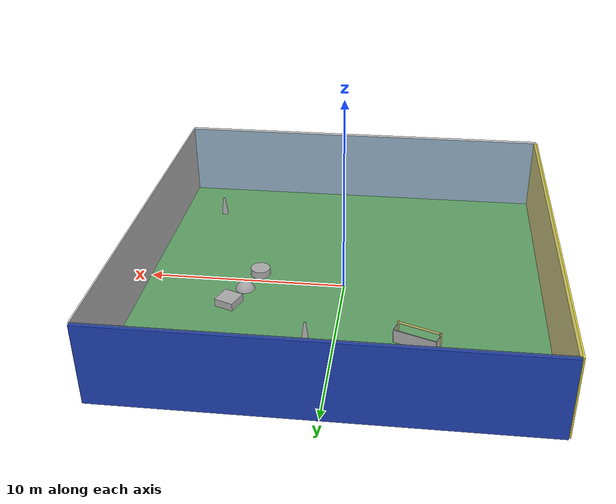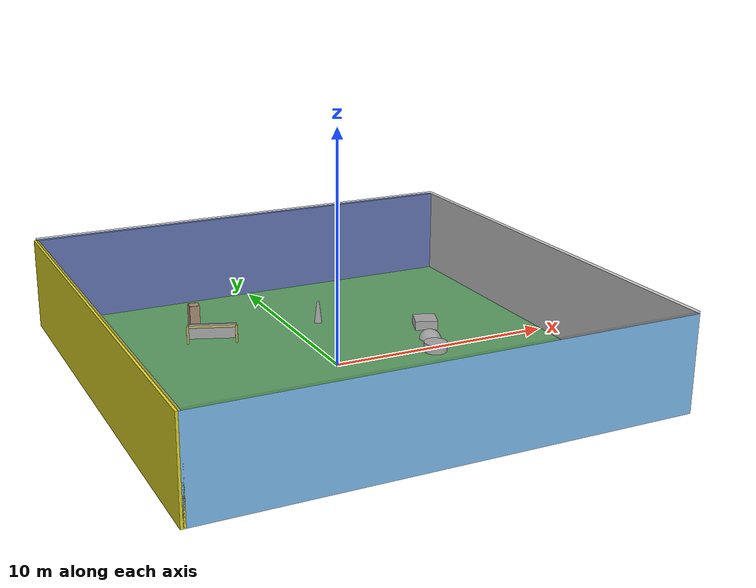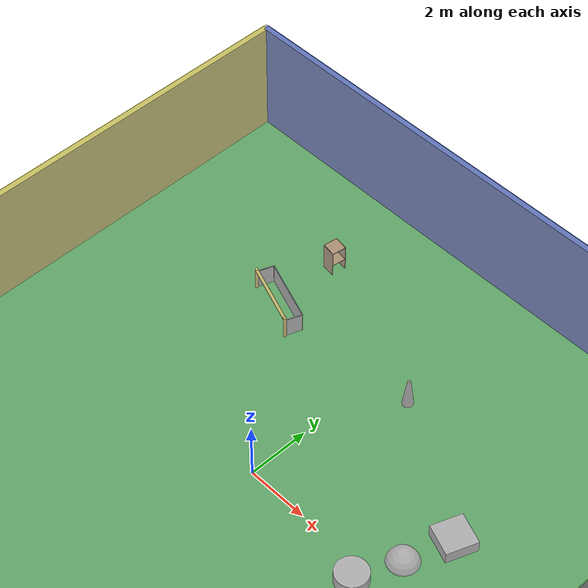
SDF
<sdf version="1.4">
 <world name="default">
  <physics type="ode">
   <max_step_size>0.001</max_step_size>
   <real_time_factor>1</real_time_factor>
   <real_time_update_rate>1000</real_time_update_rate>
   <gravity>0 0 -9.8</gravity>
  </physics>
  <scene><ambient>0.4 0.4 0.4 1</ambient><background>0.7 0.7 0.7 1</background><shadows>1</shadows></scene>
  <model name="Surrounding">
   <static>1</static>
   <link name="Ceiling">
    <collision name="Ceiling_Collision"><geometry><box><size>20 20 0.1</size></box></geometry></collision>
    <visual name="Ceiling_Visual">
     <geometry><box><size>20 20 0.1</size></box></geometry>
     <material>
      <script><uri>file://media/materials/scripts/gazebo.material</uri><name>Gazebo/GreyTransparent</name></script>
     </material>
    </visual>
    <pose>0 0 4.05 0 0 0</pose>
   </link>
   <link name="Wall_South">
    <collision name="Wall_South_Collision">
     <geometry><box><size>20 0 4</size></box></geometry>
     <pose>0 0 2 0 -0 0</pose>
    </collision>
    <visual name="Wall_South_Visual">
     <pose>0 0 2 0 -0 0</pose>
     <geometry><box><size>20 0 4</size></box></geometry>
     <material>
      <script><uri>file://media/materials/scripts/gazebo.material</uri><name>Gazebo/SkyBlue</name></script>
     </material>
    </visual>
    <velocity_decay><linear>0</linear><angular>0</angular></velocity_decay>
    <pose>0 -10 0 0 -0 0</pose>
   </link>
   <link name="Wall_East">
    <collision name="Wall_21_Collision">
     <geometry><box><size>20 0 4</size></box></geometry>
     <pose>0 0 2 0 -0 0</pose>
    </collision>
    <visual name="Wall_21_Visual">
     <pose>0 0 2 0 -0 0</pose>
     <geometry><box><size>20 0 4</size></box></geometry>
     <material>
      <script><uri>file://media/materials/scripts/gazebo.material</uri><name>Gazebo/Pioneer2Body</name></script>
     </material>
    </visual>
    <velocity_decay><linear>0</linear><angular>0</angular></velocity_decay>
    <pose>10 0 0 0 -0 1.5708</pose>
   </link>
   <link name="Wall_North">
    <collision name="Wall_22_Collision">
     <geometry><box><size>20 0.2 4</size></box></geometry>
     <pose>0 0 2 0 -0 0</pose>
    </collision>
    <visual name="Wall_22_Visual">
     <pose>0 0 2 0 -0 0</pose>
     <geometry><box><size>20 0.2 4</size></box></geometry>
     <material>
      <script><uri>file://media/materials/scripts/gazebo.material</uri><name>Gazebo/Blue</name></script>
     </material>
    </visual>
    <velocity_decay><linear>0</linear><angular>0</angular></velocity_decay>
    <pose>0 10 0 0 -0 0</pose>
   </link>
   <link name="Wall_West">
    <collision name="Wall_23_Collision">
     <geometry><box><size>20 0.2 4</size></box></geometry>
     <pose>0 0 2 0 -0 0</pose>
    </collision>
    <visual name="Wall_23_Visual">
     <pose>0 0 2 0 -0 0</pose>
     <geometry><box><size>20 0.2 4</size></box></geometry>
     <material>
      <script><uri>file://media/materials/scripts/gazebo.material</uri><name>Gazebo/YellowGlow</name></script>
     </material>
    </visual>
    <velocity_decay><linear>0</linear><angular>0</angular></velocity_decay>
    <pose>-10 0 0 0 0 -1.5708</pose>
   </link>
   <link name="Ground_link">
    <collision name="collision">
     <pose>0 0 .05 0 -0 0</pose>
     <geometry><box><size>20 20 0.1</size></box></geometry>
    </collision>
    <visual name="visual">
     <pose>0 0 .05 0 -0 0</pose>
     <geometry><box><size>20 20 0.1</size></box></geometry>
     <material>
      <script><uri>file://media/materials/scripts/gazebo.material</uri><name>Gazebo/GreenGlow</name></script>
     </material>
    </visual>
   </link>
   <static>1</static>
  </model>
  <spherical_coordinates>
   <surface_model>EARTH_WGS84</surface_model>
   <latitude_deg>0</latitude_deg>
   <longitude_deg>0</longitude_deg>
   <elevation>0</elevation>
   <heading_deg>0</heading_deg>
  </spherical_coordinates>
  <light name="lightball_0" type="diffuse">
   <diffuse>0.8 0.8 0.8 1</diffuse>
   <specular>0.2 0.2 0.2 1</specular>
   <attenuation>
    <range>100</range>
    <constant>0.7</constant>
    <linear>0.01</linear>
    <quadratic>0.001</quadratic>
   </attenuation>
   <direction>-0.5 0.1 -0.9</direction>
   <pose>0.510630234454 0.540500273763 1.98471604894 0 0 0</pose>
  </light>
  <light name="lightball_1" type="diffuse">
   <diffuse>0.8 0.8 0.8 1</diffuse>
   <specular>0.2 0.2 0.2 1</specular>
   <attenuation>
    <range>100</range>
    <constant>0.7</constant>
    <linear>0.01</linear>
    <quadratic>0.001</quadratic>
   </attenuation>
   <direction>-0.5 0.1 -0.9</direction>
   <pose>-2.89802007649 -3.62121143635 1.21745056434 0 0 0</pose>
  </light>
  <light name="lightball_2" type="diffuse">
   <diffuse>0.8 0.8 0.8 1</diffuse>
   <specular>0.2 0.2 0.2 1</specular>
   <attenuation>
    <range>100</range>
    <constant>0.7</constant>
    <linear>0.01</linear>
    <quadratic>0.001</quadratic>
   </attenuation>
   <direction>-0.5 0.1 -0.9</direction>
   <pose>-9.8344582874 7.98601172145 2.79937646053 0 0 0</pose>
  </light>
  <light name="lightball_3" type="diffuse">
   <diffuse>0.8 0.8 0.8 1</diffuse>
   <specular>0.2 0.2 0.2 1</specular>
   <attenuation>
    <range>100</range>
    <constant>0.7</constant>
    <linear>0.01</linear>
    <quadratic>0.001</quadratic>
   </attenuation>
   <direction>-0.5 0.1 -0.9</direction>
   <pose>6.27518092052 -6.66415394584 1.18087067395 0 0 0</pose>
  </light>
  <light name="lightball_4" type="diffuse">
   <diffuse>0.8 0.8 0.8 1</diffuse>
   <specular>0.2 0.2 0.2 1</specular>
   <attenuation>
    <range>100</range>
    <constant>0.7</constant>
    <linear>0.01</linear>
    <quadratic>0.001</quadratic>
   </attenuation>
   <direction>-0.5 0.1 -0.9</direction>
   <pose>0.551071650022 -3.1804013432 2.8469687997 0 0 0</pose>
  </light>
  <light name="lightball_5" type="diffuse">
   <diffuse>0.8 0.8 0.8 1</diffuse>
   <specular>0.2 0.2 0.2 1</specular>
   <attenuation>
    <range>100</range>
    <constant>0.7</constant>
    <linear>0.01</linear>
    <quadratic>0.001</quadratic>
   </attenuation>
   <direction>-0.5 0.1 -0.9</direction>
   <pose>-7.76457134971 -1.99242611248 2.71644229308 0 0 0</pose>
  </light>
  <light name="lightball_6" type="diffuse">
   <diffuse>0.8 0.8 0.8 1</diffuse>
   <specular>0.2 0.2 0.2 1</specular>
   <attenuation>
    <range>100</range>
    <constant>0.7</constant>
    <linear>0.01</linear>
    <quadratic>0.001</quadratic>
   </attenuation>
   <direction>-0.5 0.1 -0.9</direction>
   <pose>-8.15587990282 0.45047251672 1.83295112862 0 0 0</pose>
  </light>
  <light name="lightball_7" type="diffuse">
   <diffuse>0.8 0.8 0.8 1</diffuse>
   <specular>0.2 0.2 0.2 1</specular>
   <attenuation>
    <range>100</range>
    <constant>0.7</constant>
    <linear>0.01</linear>
    <quadratic>0.001</quadratic>
   </attenuation>
   <direction>-0.5 0.1 -0.9</direction>
   <pose>7.31851038391 -5.44535426966 3.51195017492 0 0 0</pose>
  </light>
  <light name="lightball_8" type="diffuse">
   <diffuse>0.8 0.8 0.8 1</diffuse>
   <specular>0.2 0.2 0.2 1</specular>
   <attenuation>
    <range>100</range>
    <constant>0.7</constant>
    <linear>0.01</linear>
    <quadratic>0.001</quadratic>
   </attenuation>
   <direction>-0.5 0.1 -0.9</direction>
   <pose>-4.29761085496 -5.393224839 2.127750129 0 0 0</pose>
  </light>
  <include>
   <uri>model://robocup_3Dsim_goal</uri>
   <pose>-3.89325092682 4.37319257755 0 0 0 1.2177785766</pose>
  </include>
  <include><uri>model://cabinet</uri><pose>-3.83171732961 6.96819730151 0 0 0 2.99462274963</pose></include>
  <include>
   <uri>model://construction_cone</uri>
   <pose>1.32470833656 4.80635331308 0 0 0 1.93881722013</pose>
  </include>
  <include>
   <uri>model://textured_shapes</uri>
   <pose>4.92058997782 0.879903877691 0 0 0 2.78062612983</pose>
  </include>
  <include>
   <uri>model://construction_cone</uri>
   <pose>7.7043862309 -6.91405151215 0 0 0 0.372654973428</pose>
  </include>
 </world>
</sdf>

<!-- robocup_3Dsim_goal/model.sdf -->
<sdf version="1.5">
  <model name="robocup_3d_goal">
    <static>true</static>
    <link name="left_post">
      <pose>0 1.05 0.45 0 0 0</pose>
      <collision name="collision">
        <geometry>
          <cylinder>
            <radius>0.05</radius>
            <length>0.9</length>
          </cylinder>
        </geometry>
      </collision>
      <visual name="visual">
        <geometry>
          <cylinder>
            <radius>0.05</radius>
            <length>0.9</length>
          </cylinder>
        </geometry>
        <material>
          <script>
            <uri>file://media/materials/scripts/gazebo.material</uri>
            <name>Gazebo/ZincYellow</name>
          </script>
        </material>
      </visual>
    </link>
    <link name="left_support_horiz_lower">
      <pose>0.30 1.05 0.01 0 0 0</pose>
      <collision name="collision">
        <geometry>
          <box>
            <size>0.50 0.02 0.02</size>
          </box>
        </geometry>
      </collision>
      <visual name="visual">
        <geometry>
          <box>
            <size>0.50 0.02 0.02</size>
          </box>
        </geometry>
        <material>
          <script>
            <uri>file://media/materials/scripts/gazebo.material</uri>
            <name>Gazebo/White</name>
          </script>
        </material>
      </visual>
    </link>
    <link name="left_support_horiz_upper">
      <pose>0.30 1.05 0.79 0 0 0</pose>
      <collision name="collision">
        <geometry>
          <box>
            <size>0.50 0.02 0.02</size>
          </box>
        </geometry>
      </collision>
      <visual name="visual">
        <geometry>
          <box>
            <size>0.50 0.02 0.02</size>
          </box>
        </geometry>
        <material>
          <script>
            <uri>file://media/materials/scripts/gazebo.material</uri>
            <name>Gazebo/White</name>
          </script>
        </material>
      </visual>
    </link>
    <link name="left_support_vertical">
      <pose>0.56 1.05 0.4 0 1.5708 0</pose>
      <collision name="collision">
        <geometry>
          <box>
            <size>0.80 0.02 0.02</size>
          </box>
        </geometry>
      </collision>
      <visual name="visual">
        <geometry>
          <box>
            <size>0.80 0.02 0.02</size>
          </box>
        </geometry>
        <material>
          <script>
            <uri>file://media/materials/scripts/gazebo.material</uri>
            <name>Gazebo/White</name>
          </script>
        </material>
      </visual>
    </link>
    <link name="right_support_horiz_lower">
      <pose>0.30 -1.05 0.01 0 0 0</pose>
      <collision name="collision">
        <geometry>
          <box>
            <size>0.50 0.02 0.02</size>
          </box>
        </geometry>
      </collision>
      <visual name="visual">
        <geometry>
          <box>
            <size>0.50 0.02 0.02</size>
          </box>
        </geometry>
        <material>
          <script>
            <uri>file://media/materials/scripts/gazebo.material</uri>
            <name>Gazebo/White</name>
          </script>
        </material>
      </visual>
    </link>
    <link name="right_support_horiz_upper">
      <pose>0.30 -1.05 0.79 0 0 0</pose>
      <collision name="collision">
        <geometry>
          <box>
            <size>0.50 0.02 0.02</size>
          </box>
        </geometry>
      </collision>
      <visual name="visual">
        <geometry>
          <box>
            <size>0.50 0.02 0.02</size>
          </box>
        </geometry>
        <material>
          <script>
            <uri>file://media/materials/scripts/gazebo.material</uri>
            <name>Gazebo/White</name>
          </script>
        </material>
      </visual>
    </link>
    <link name="right_support_vertical">
      <pose>0.56 -1.05 0.4 0 1.5708 0</pose>
      <collision name="collision">
        <geometry>
          <box>
            <size>0.80 0.02 0.02</size>
          </box>
        </geometry>
      </collision>
      <visual name="visual">
        <geometry>
          <box>
            <size>0.80 0.02 0.02</size>
          </box>
        </geometry>
        <material>
          <script>
            <uri>file://media/materials/scripts/gazebo.material</uri>
            <name>Gazebo/White</name>
          </script>
        </material>
      </visual>
    </link>
    <link name="center_support_horiz_lower">
      <pose>0.56 0 0.01 0 1.5708 0</pose>
      <collision name="collision">
        <geometry>
          <box>
            <size>0.02 2.08 0.02</size>
          </box>
        </geometry>
      </collision>
      <visual name="visual">
        <geometry>
          <box>
            <size>0.02 2.08 0.02</size>
          </box>
        </geometry>
        <material>
          <script>
            <uri>file://media/materials/scripts/gazebo.material</uri>
            <name>Gazebo/White</name>
          </script>
        </material>
      </visual>
    </link>
    <link name="center_support_horiz_upper">
      <pose>0.56 0 0.79 0 1.5708 0</pose>
      <collision name="collision">
        <geometry>
          <box>
            <size>0.02 2.08 0.02</size>
          </box>
        </geometry>
      </collision>
      <visual name="visual">
        <geometry>
          <box>
            <size>0.02 2.08 0.02</size>
          </box>
        </geometry>
        <material>
          <script>
            <uri>file://media/materials/scripts/gazebo.material</uri>
            <name>Gazebo/White</name>
          </script>
        </material>
      </visual>
    </link>
    <link name="right_post">
      <pose>0 -1.05 0.45 0 0 0</pose>
      <collision name="collision">
        <geometry>
          <cylinder>
            <radius>0.05</radius>
            <length>0.9</length>
          </cylinder>
        </geometry>
      </collision>
      <visual name="visual">
        <geometry>
          <cylinder>
            <radius>0.05</radius>
            <length>0.9</length>
          </cylinder>
        </geometry>
        <material>
          <script>
            <uri>file://media/materials/scripts/gazebo.material</uri>
            <name>Gazebo/ZincYellow</name>
          </script>
        </material>
      </visual>
    </link>
    <link name="crossbar">
      <pose>0 0 0.85 1.57 1.57 0</pose>
      <collision name="collision">
        <geometry>
          <cylinder>
            <radius>0.05</radius>
            <length>2.0</length>
          </cylinder>
        </geometry>
      </collision>
      <visual name="visual">
        <geometry>
          <cylinder>
            <radius>0.05</radius>
            <length>2.0</length>
          </cylinder>
        </geometry>
        <material>
          <script>
            <uri>file://media/materials/scripts/gazebo.material</uri>
            <name>Gazebo/ZincYellow</name>
          </script>
        </material>
      </visual>
    </link>
    <link name="center_net">
      <pose>0.56 0 0.40 0 0 0</pose>
      <collision name="collision">
        <geometry>
          <box>
            <size>0.01 2.1 0.80</size>
          </box>
        </geometry>
      </collision>
      <visual name="visual">
        <geometry>
          <box>
            <size>0.01 2.1 0.80</size>
          </box>
        </geometry>
        <material>
          <script>
            <uri>model://../model_source/models/robocup09_spl_field/materials/scripts/</uri>
            <uri>model://../model_source/models/robocup09_spl_field/materials/textures/</uri>
            <name>RoboCup/Net</name>
          </script>
        </material>
      </visual>
    </link>
    <link name="left_net">
      <pose>0.30 1.05 0.40 0 0 0</pose>
      <collision name="collision">
        <geometry>
          <box>
            <size>0.50 0.01 0.76</size>
          </box>
        </geometry>
      </collision>
      <visual name="visual">
        <geometry>
          <box>
            <size>0.50 0.01 0.76</size>
          </box>
        </geometry>
        <material>
          <script>
            <uri>model://../model_source/models/robocup09_spl_field/materials/scripts/</uri>
            <uri>model://../model_source/models/robocup09_spl_field/materials/textures/</uri>
            <name>RoboCup/Net</name>
          </script>
        </material>
      </visual>
    </link>
    <link name="right_net">
      <pose>0.30 -1.05 0.40 0 0 0</pose>
      <collision name="collision">
        <geometry>
          <box>
            <size>0.50 0.01 0.76</size>
          </box>
        </geometry>
      </collision>
      <visual name="visual">
        <geometry>
          <box>
            <size>0.50 0.01 0.76</size>
          </box>
        </geometry>
        <material>
          <script>
            <uri>model://../model_source/models/robocup09_spl_field/materials/scripts/</uri>
            <uri>model://../model_source/models/robocup09_spl_field/materials/textures/</uri>
            <name>RoboCup/Net</name>
          </script>
        </material>
      </visual>
    </link>
  </model>
</sdf>

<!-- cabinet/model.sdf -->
<sdf version="1.5">
  <model name="cabinet">
    <static>true</static>
    <link name="cabinet_bottom_plate">
      <inertial>
        <pose>0 0 -1 0 0 0</pose>
        <inertia>
          <ixx>2.050000</ixx>
          <ixy>0</ixy>
          <ixz>0</ixz>
          <iyy>2.050000</iyy>
          <iyz>0</iyz>
          <izz>2.050000</izz>
        </inertia>
        <mass>25.000000</mass>
      </inertial>
      <collision name="cabinet_bottom_plate_geom">
        <pose>0 0 0.010000 0 0 0</pose>
        <geometry>
          <box>
            <size>0.450000 0.450000 0.020000</size>
          </box>
        </geometry>
      </collision>
      <visual name="cabinet_bottom_plate_geom_visual">
        <pose>0 0 0.010000 0 0 0</pose>
        <geometry>
          <box>
            <size>0.450000 0.450000 0.020000</size>
          </box>
        </geometry>
        <material>
          <script>
            <uri>model://media/materials/scripts/gazebo.material</uri>
            <name>Gazebo/Wood</name>
          </script>
        </material>
      </visual>
      <collision name="cabinet_bottom_plate_geom_cabinet_back_plate">
        <pose>0.235000 0 0.510000 0 0 0</pose>
        <geometry>
          <box>
            <size>0.020000 0.450000 1.020000</size>
          </box>
        </geometry>
      </collision>
      <visual name="cabinet_bottom_plate_geom_cabinet_back_plate_visual">
        <pose>0.235000 0 0.510000 0 0 0</pose>
        <geometry>
          <box>
            <size>0.020000 0.450000 1.020000</size>
          </box>
        </geometry>
        <material>
          <script>
            <uri>model://media/materials/scripts/gazebo.material</uri>
            <name>Gazebo/Wood</name>
          </script>
        </material>
      </visual>
      <collision name="cabinet_bottom_plate_geom_cabinet_left_plate">
        <pose>0 0.235000 0.510000 0 0 0</pose>
        <geometry>
          <box>
            <size>0.450000 0.020000 1.020000</size>
          </box>
        </geometry>
      </collision>
      <visual name="cabinet_bottom_plate_geom_cabinet_left_plate_visual">
        <pose>0 0.235000 0.510000 0 0 0</pose>
        <geometry>
          <box>
            <size>0.450000 0.020000 1.020000</size>
          </box>
        </geometry>
        <material>
          <script>
            <uri>model://media/materials/scripts/gazebo.material</uri>
            <name>Gazebo/Wood</name>
          </script>
        </material>
      </visual>
      <collision name="cabinet_bottom_plate_geom_cabinet_middle_plate">
        <pose>0 0 0.510000 0 0 0</pose>
        <geometry>
          <box>
            <size>0.450000 0.450000 0.020000</size>
          </box>
        </geometry>
      </collision>
      <visual name="cabinet_bottom_plate_geom_cabinet_middle_plate_visual">
        <pose>0 0 0.510000 0 0 0</pose>
        <geometry>
          <box>
            <size>0.450000 0.450000 0.020000</size>
          </box>
        </geometry>
        <material>
          <script>
            <uri>model://media/materials/scripts/gazebo.material</uri>
            <name>Gazebo/Wood</name>
          </script>
        </material>
      </visual>
      <collision name="cabinet_bottom_plate_geom_cabinet_right_plate">
        <pose>0 -0.235000 0.510000 0 0 0</pose>
        <geometry>
          <box>
            <size>0.450000 0.020000 1.020000</size>
          </box>
        </geometry>
      </collision>
      <visual name="cabinet_bottom_plate_geom_cabinet_right_plate_visual">
        <pose>0 -0.235000 0.510000 0 0 0</pose>
        <geometry>
          <box>
            <size>0.450000 0.020000 1.020000</size>
          </box>
        </geometry>
        <material>
          <script>
            <uri>model://media/materials/scripts/gazebo.material</uri>
            <name>Gazebo/Wood</name>
          </script>
        </material>
      </visual>
      <collision name="cabinet_bottom_plate_geom_cabinet_top_plate">
        <pose>0 0 1.010000 0 0 0</pose>
        <geometry>
          <box>
            <size>0.450000 0.450000 0.020000</size>
          </box>
        </geometry>
      </collision>
      <visual name="cabinet_bottom_plate_geom_cabinet_top_plate_visual">
        <pose>0 0 1.010000 0 0 0</pose>
        <geometry>
          <box>
            <size>0.450000 0.450000 0.020000</size>
          </box>
        </geometry>
        <material>
          <script>
            <uri>model://media/materials/scripts/gazebo.material</uri>
            <name>Gazebo/Wood</name>
          </script>
        </material>
      </visual>
    </link>
  </model>
</sdf>

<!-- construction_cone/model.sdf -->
<sdf version="1.5">
  <model name="Construction Cone">
    <link name="link">
      <collision name="collision">
        <geometry>
          <mesh>
            <scale>10 10 10</scale>
            <uri>file://isr-testbed/construction_cone/meshes/construction_cone.dae</uri>
          </mesh>
        </geometry>
      </collision>
      <visual name="visual">
        <geometry>
          <mesh>
            <scale>10 10 10</scale>
            <uri>file://isr-testbed/construction_cone/meshes/construction_cone.dae</uri>
          </mesh>
        </geometry>
      </visual>
    </link>
  </model>
</sdf>

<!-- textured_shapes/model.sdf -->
<sdf version="1.6">
  <model name="textured_shapes">
    <pose>0 0 0.5 0 0 0</pose>
    <link name="box">
      <pose>0 -1.5 0 0 0 0</pose>
      <collision name="collision">
        <geometry>
          <box>
            <size>1 1 1</size>
          </box>
        </geometry>
      </collision>
      <visual name="visual">
        <geometry>
          <box>
            <size>1 1 1</size>
          </box>
        </geometry>
        <material>
          <script>
            <uri>model://../model_source/models/textured_shapes/materials/scripts</uri>
            <uri>model://../model_source/models/textured_shapes/materials/textures</uri>
            <name>TexturedShape/Squares</name>
          </script>
        </material>
      </visual>
    </link>
    <link name="sphere">
      <collision name="collision">
        <geometry>
          <sphere>
            <radius>0.5</radius>
          </sphere>
        </geometry>
      </collision>
      <visual name="visual">
        <geometry>
          <sphere>
            <radius>0.5</radius>
          </sphere>
        </geometry>
        <material>
          <script>
            <uri>model://../model_source/models/textured_shapes/materials/scripts</uri>
            <uri>model://../model_source/models/textured_shapes/materials/textures</uri>
            <name>TexturedShape/Squares</name>
          </script>
        </material>
      </visual>
    </link>
    <link name="cylinder">
      <pose>0 1.5 0 0 0 0</pose>
      <collision name="collision">
        <geometry>
          <cylinder>
            <radius>0.5</radius>
            <length>1</length>
          </cylinder>
        </geometry>
      </collision>
      <visual name="visual">
        <geometry>
          <cylinder>
            <radius>0.5</radius>
            <length>1</length>
          </cylinder>
        </geometry>
        <material>
          <script>
            <uri>model://../model_source/models/textured_shapes/materials/scripts</uri>
            <uri>model://../model_source/models/textured_shapes/materials/textures</uri>
            <name>TexturedShape/Squares</name>
          </script>
        </material>
      </visual>
    </link>
  </model>
</sdf>
